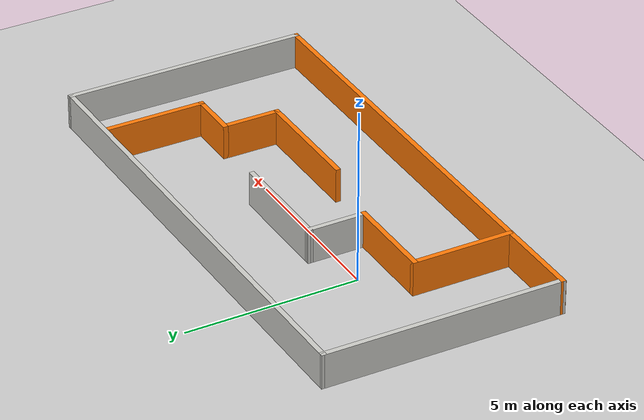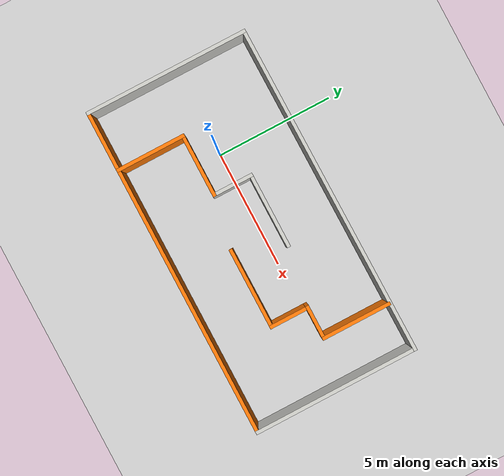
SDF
<sdf version="1.7">
 <world name="default">
  <light name="sun" type="directional">
   <pose>0 0 10 0 -0 0</pose>
   <diffuse>0.8 0.8 0.8 1</diffuse>
   <specular>0.2 0.2 0.2 1</specular>
   <attenuation>
    <range>1000</range>
    <constant>0.9</constant>
    <linear>0.01</linear>
    <quadratic>0.001</quadratic>
   </attenuation>
   <direction>-0.5 0.1 -0.9</direction>
   <spot><inner_angle>0</inner_angle><outer_angle>0</outer_angle><falloff>0</falloff></spot>
  </light>
  <model name="ground_plane">
   <static>1</static>
   <link name="link">
    <collision name="collision">
     <geometry><plane><normal>0 0 1</normal><size>100 100</size></plane></geometry>
     <surface><friction><ode><mu>100</mu><mu2>50</mu2></ode></friction></surface>
    </collision>
    <visual name="visual">
     <cast_shadows>0</cast_shadows>
     <geometry><plane><normal>0 0 1</normal><size>100 100</size></plane></geometry>
     <material>
      <script><uri>file://media/materials/scripts/gazebo.material</uri><name>Gazebo/Grey</name></script>
     </material>
    </visual>
   </link>
  </model>
  <gravity>0 0 -9.8</gravity>
  <magnetic_field>6e-06 2.3e-05 -4.2e-05</magnetic_field>
  <atmosphere type="adiabatic"/>
  <physics type="ode">
   <max_step_size>0.001</max_step_size>
   <real_time_factor>1</real_time_factor>
   <real_time_update_rate>1000</real_time_update_rate>
  </physics>
  <scene><ambient>0.4 0.4 0.4 1</ambient><background>0.7 0.7 0.7 1</background><shadows>1</shadows></scene>
  <spherical_coordinates>
   <surface_model>EARTH_WGS84</surface_model>
   <latitude_deg>0</latitude_deg>
   <longitude_deg>0</longitude_deg>
   <elevation>0</elevation>
   <heading_deg>0</heading_deg>
  </spherical_coordinates>
  <model name="myworld1">
   <pose>3.31013 -0.319787 0 0 -0 0</pose>
   <link name="Wall_12">
    <collision name="Wall_12_Collision">
     <geometry><box><size>3 0.15 1</size></box></geometry>
     <pose>0 0 0.5 0 -0 0</pose>
    </collision>
    <visual name="Wall_12_Visual">
     <pose>0 0 0.5 0 -0 0</pose>
     <geometry><box><size>3 0.15 1</size></box></geometry>
     <material>
      <script><uri>file://media/materials/scripts/gazebo.material</uri><name>Gazebo/Grey</name></script>
      <ambient>0.996078 0.47451 0.0196078 1</ambient>
     </material>
     <meta><layer>0</layer></meta>
    </visual>
    <pose>-4.53213 -2.04921 0 0 -0 1.5708</pose>
   </link>
   <link name="Wall_13">
    <collision name="Wall_13_Collision">
     <geometry><box><size>2.75 0.15 1</size></box></geometry>
     <pose>0 0 0.5 0 -0 0</pose>
    </collision>
    <visual name="Wall_13_Visual">
     <pose>0 0 0.5 0 -0 0</pose>
     <geometry><box><size>2.75 0.15 1</size></box></geometry>
     <material>
      <script><uri>file://media/materials/scripts/gazebo.material</uri><name>Gazebo/Grey</name></script>
      <ambient>0.996078 0.47451 0.0196078 1</ambient>
     </material>
     <meta><layer>0</layer></meta>
    </visual>
    <pose>-3.23213 -0.624213 0 0 -0 0</pose>
   </link>
   <link name="Wall_14">
    <collision name="Wall_14_Collision">
     <geometry><box><size>1.777 0.15 1</size></box></geometry>
     <pose>0 0 0.5 0 -0 0</pose>
    </collision>
    <visual name="Wall_14_Visual">
     <pose>0 0 0.5 0 -0 0</pose>
     <geometry><box><size>1.777 0.15 1</size></box></geometry>
     <material>
      <script><uri>file://media/materials/scripts/gazebo.material</uri><name>Gazebo/CeilingTiled</name></script>
      <ambient>0.996078 0.47451 0.0196078 1</ambient>
     </material>
     <meta><layer>0</layer></meta>
    </visual>
    <pose>-1.93213 0.189287 0 0 -0 1.5708</pose>
   </link>
   <link name="Wall_15">
    <collision name="Wall_15_Collision">
     <geometry><box><size>3.25 0.15 1</size></box></geometry>
     <pose>0 0 0.5 0 -0 0</pose>
    </collision>
    <visual name="Wall_15_Visual">
     <pose>0 0 0.5 0 -0 0</pose>
     <geometry><box><size>3.25 0.15 1</size></box></geometry>
     <material>
      <script><uri>file://media/materials/scripts/gazebo.material</uri><name>Gazebo/CeilingTiled</name></script>
      <ambient>0.996078 0.47451 0.0196078 1</ambient>
     </material>
     <meta><layer>0</layer></meta>
    </visual>
    <pose>-0.382133 1.00229 0 0 -0 -0.000323</pose>
   </link>
   <link name="Wall_17">
    <collision name="Wall_17_Collision">
     <geometry><box><size>3 0.15 1</size></box></geometry>
     <pose>0 0 0.5 0 -0 0</pose>
    </collision>
    <visual name="Wall_17_Visual">
     <pose>0 0 0.5 0 -0 0</pose>
     <geometry><box><size>3 0.15 1</size></box></geometry>
     <material>
      <script><uri>file://media/materials/scripts/gazebo.material</uri><name>Gazebo/Grey</name></script>
      <ambient>0.996078 0.47451 0.0196078 1</ambient>
     </material>
     <meta><layer>0</layer></meta>
    </visual>
    <pose>5.01687 1.96379 0 0 -0 -1.5708</pose>
   </link>
   <link name="Wall_18">
    <collision name="Wall_18_Collision">
     <geometry><box><size>1.5 0.15 1</size></box></geometry>
     <pose>0 0 0.5 0 -0 0</pose>
    </collision>
    <visual name="Wall_18_Visual">
     <pose>0 0 0.5 0 -0 0</pose>
     <geometry><box><size>1.5 0.15 1</size></box></geometry>
     <material>
      <script><uri>file://media/materials/scripts/gazebo.material</uri><name>Gazebo/Grey</name></script>
      <ambient>0.996078 0.47451 0.0196078 1</ambient>
     </material>
     <meta><layer>0</layer></meta>
    </visual>
    <pose>4.34187 0.538787 0 0 -0 3.14159</pose>
   </link>
   <link name="Wall_19">
    <collision name="Wall_19_Collision">
     <geometry><box><size>1.75 0.15 1</size></box></geometry>
     <pose>0 0 0.5 0 -0 0</pose>
    </collision>
    <visual name="Wall_19_Visual">
     <pose>0 0 0.5 0 -0 0</pose>
     <geometry><box><size>1.75 0.15 1</size></box></geometry>
     <material>
      <script><uri>file://media/materials/scripts/gazebo.material</uri><name>Gazebo/Grey</name></script>
      <ambient>0.996078 0.47451 0.0196078 1</ambient>
     </material>
     <meta><layer>0</layer></meta>
    </visual>
    <pose>3.66687 -0.261213 0 0 -0 -1.5708</pose>
   </link>
   <link name="Wall_20">
    <collision name="Wall_20_Collision">
     <geometry><box><size>3.5 0.15 1</size></box></geometry>
     <pose>0 0 0.5 0 -0 0</pose>
    </collision>
    <visual name="Wall_20_Visual">
     <pose>0 0 0.5 0 -0 0</pose>
     <geometry><box><size>3.5 0.15 1</size></box></geometry>
     <material>
      <script><uri>file://media/materials/scripts/gazebo.material</uri><name>Gazebo/Grey</name></script>
      <ambient>0.996078 0.47451 0.0196078 1</ambient>
     </material>
     <meta><layer>0</layer></meta>
    </visual>
    <pose>1.99187 -1.06121 0 0 -0 3.14159</pose>
   </link>
   <link name="Wall_6">
    <collision name="Wall_6_Collision">
     <geometry><box><size>7.01105 0.15 1</size></box></geometry>
     <pose>0 0 0.5 0 -0 0</pose>
    </collision>
    <visual name="Wall_6_Visual">
     <pose>0 0 0.5 0 -0 0</pose>
     <geometry><box><size>7.01105 0.15 1</size></box></geometry>
     <material>
      <script><uri>file://media/materials/scripts/gazebo.material</uri><name>Gazebo/CeilingTiled</name></script>
      <ambient>0.996078 0.47451 0.0196078 1</ambient>
     </material>
     <meta><layer>0</layer></meta>
    </visual>
    <pose>-7.03663 -0.036713 0 0 -0 1.56686</pose>
   </link>
   <link name="Wall_7">
    <collision name="Wall_7_Collision">
     <geometry><box><size>14.2235 0.15 1</size></box></geometry>
     <pose>0 0 0.5 0 -0 0</pose>
    </collision>
    <visual name="Wall_7_Visual">
     <pose>0 0 0.5 0 -0 0</pose>
     <geometry><box><size>14.2235 0.15 1</size></box></geometry>
     <material>
      <script><uri>file://media/materials/scripts/gazebo.material</uri><name>Gazebo/CeilingTiled</name></script>
      <ambient>0.996078 0.47451 0.0196078 1</ambient>
     </material>
     <meta><layer>0</layer></meta>
    </visual>
    <pose>0.013367 3.43379 0 0 -0 0.005685</pose>
   </link>
   <link name="Wall_8">
    <collision name="Wall_8_Collision">
     <geometry><box><size>7.096 0.15 1</size></box></geometry>
     <pose>0 0 0.5 0 -0 0</pose>
    </collision>
    <visual name="Wall_8_Visual">
     <pose>0 0 0.5 0 -0 0</pose>
     <geometry><box><size>7.096 0.15 1</size></box></geometry>
     <material>
      <script><uri>file://media/materials/scripts/gazebo.material</uri><name>Gazebo/CeilingTiled</name></script>
      <ambient>0.996078 0.47451 0.0196078 1</ambient>
     </material>
     <meta><layer>0</layer></meta>
    </visual>
    <pose>7.04987 0.000787 0 0 -0 -1.5708</pose>
   </link>
   <link name="Wall_9">
    <collision name="Wall_9_Collision">
     <geometry><box><size>14.25 0.15 1</size></box></geometry>
     <pose>0 0 0.5 0 -0 0</pose>
    </collision>
    <visual name="Wall_9_Visual">
     <pose>0 0 0.5 0 -0 0</pose>
     <geometry><box><size>14.25 0.15 1</size></box></geometry>
     <material>
      <script><uri>file://media/materials/scripts/gazebo.material</uri><name>Gazebo/Grey</name></script>
      <ambient>0.996078 0.47451 0.0196078 1</ambient>
     </material>
     <meta><layer>0</layer></meta>
    </visual>
    <pose>-0.000133 -3.47221 0 0 -0 3.14159</pose>
   </link>
   <static>1</static>
  </model>
 </world>
</sdf>
